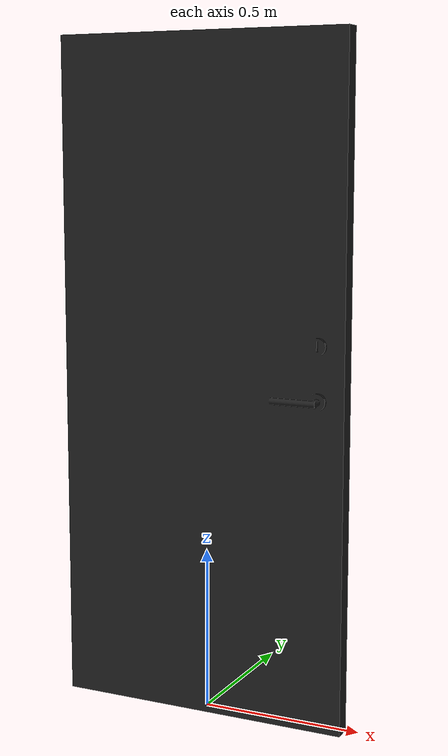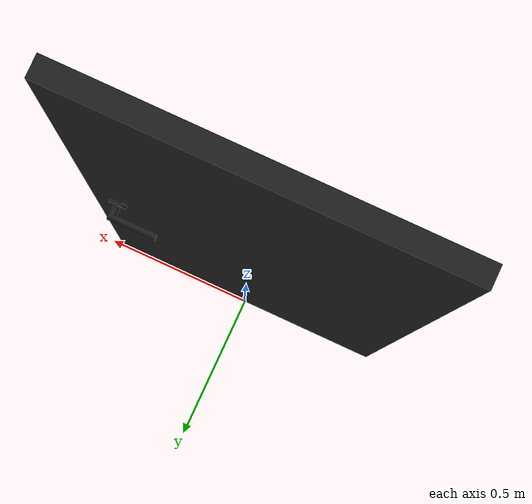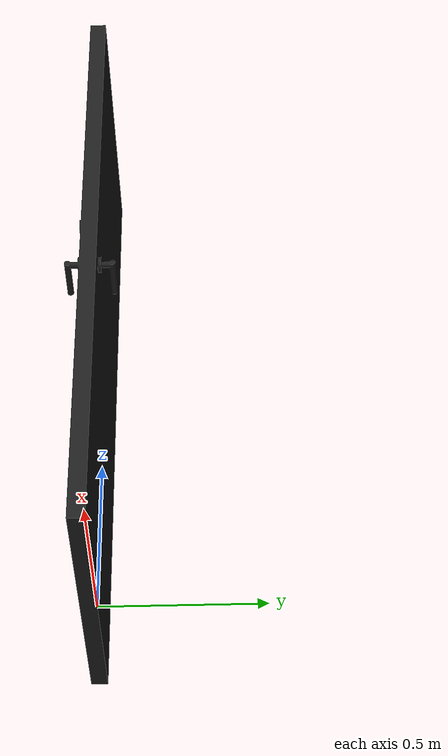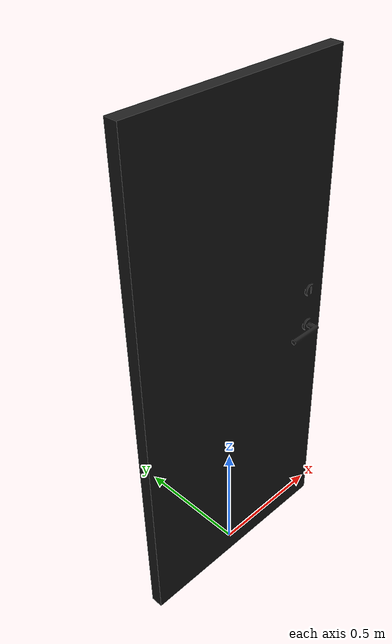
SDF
<?xml version="1.0"?>
<sdf version='1.6'>
  <model name='Door_in'>
    <link name='Door_in'>
      <pose frame=''>0 0 0 0 -0 0</pose>
      <inertial>
        <pose frame=''>0.00057 -0.026006 1.025 0 -0 0</pose>
        <mass>33.399</mass>
        <inertia>
          <ixx>11.685</ixx>
          <ixy>7.223e-05</ixy>
          <ixz>0.00010293</ixz>
          <iyy>14.036</iyy>
          <iyz>-2.5678e-05</iyz>
          <izz>2.3663</izz>
        </inertia>
      </inertial>
      <collision name='Door_in_collision'>
        <pose frame=''>0 0 0 1.5708 -0 0</pose>
        <geometry>
          <mesh>
            <scale>1 1 1</scale>
            <uri>model://Door_in/meshes/Door_in.dae</uri>
          </mesh>
        </geometry>
      </collision>
      <visual name='Door_in_visual'>
        <pose frame=''>0 0 0 1.5708 -0 0</pose>
        <geometry>
          <mesh>
            <scale>1 1 1</scale>
            <uri>model://Door_in/meshes/Door_in.dae</uri>
          </mesh>
        </geometry>
      </visual>
    </link>
  </model>
</sdf>
